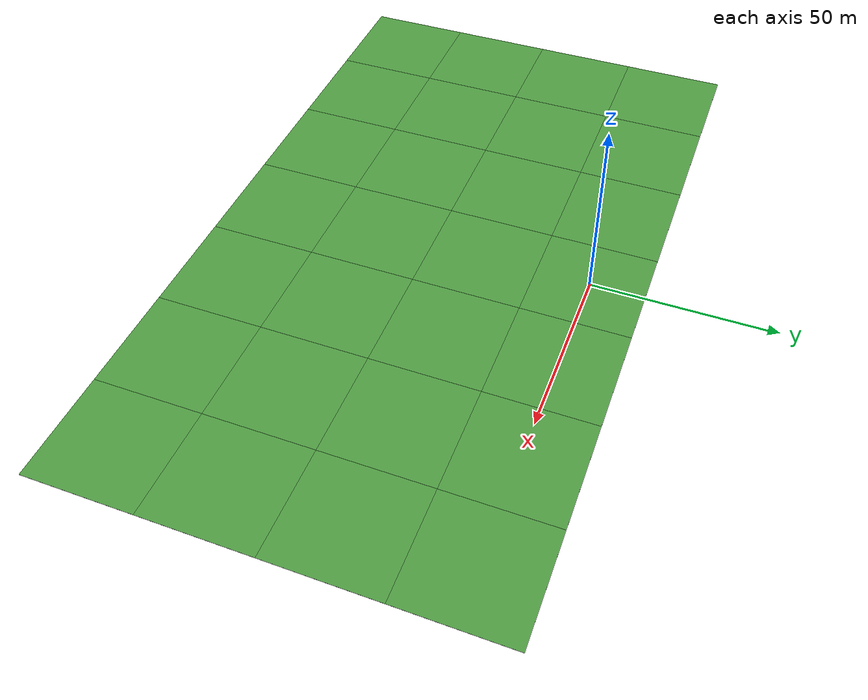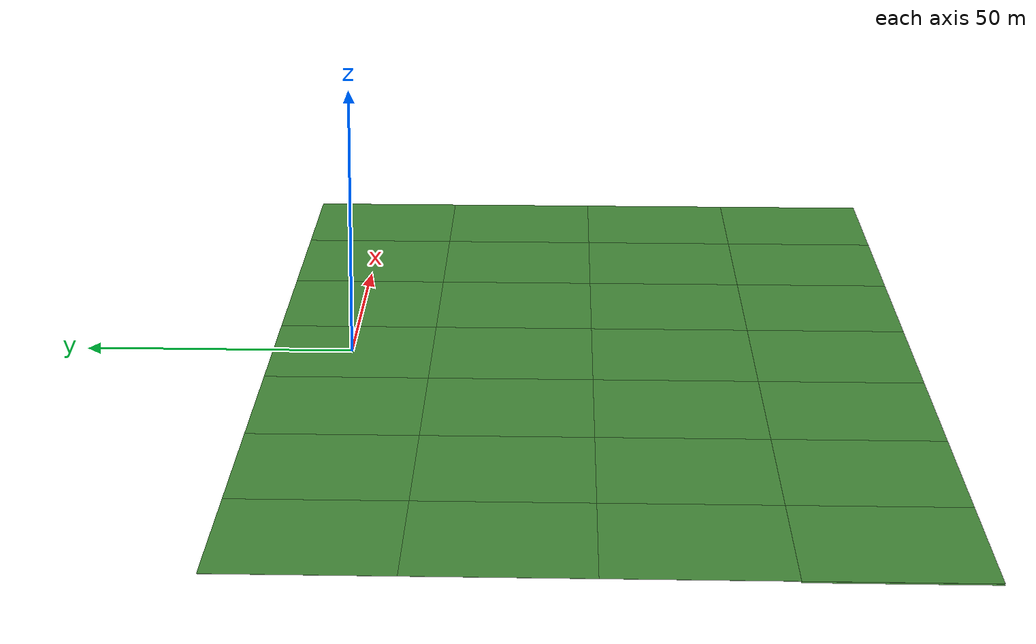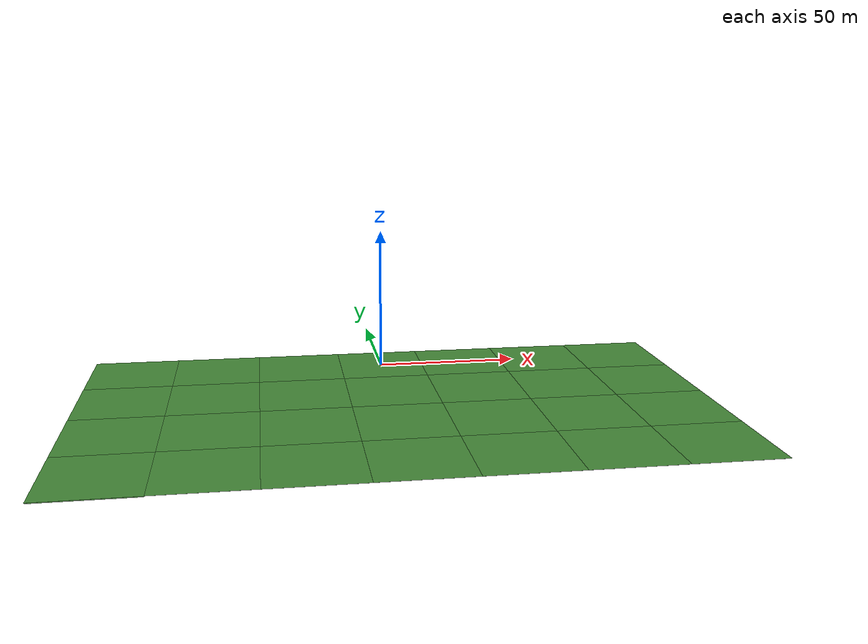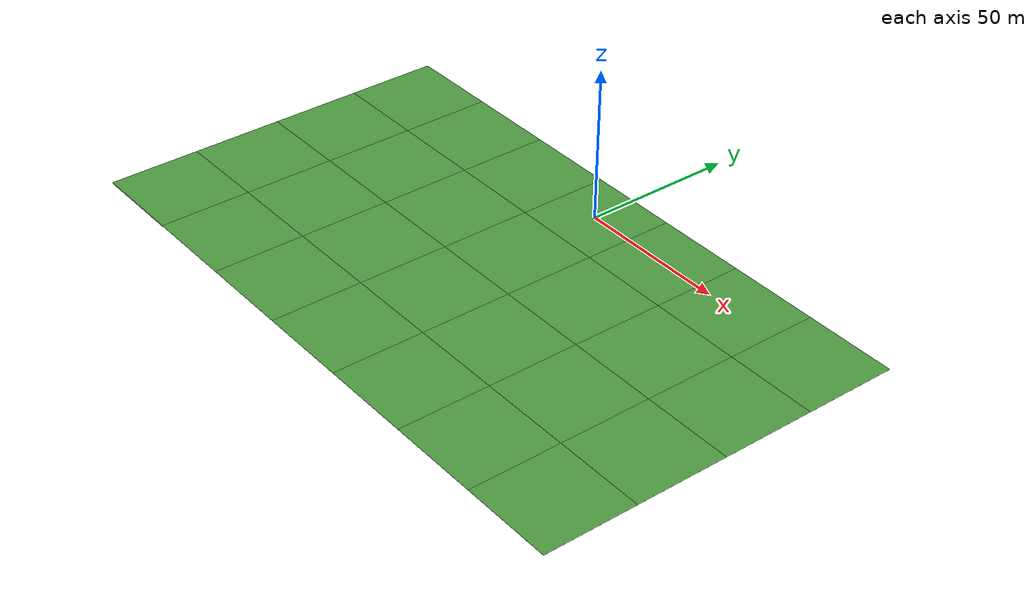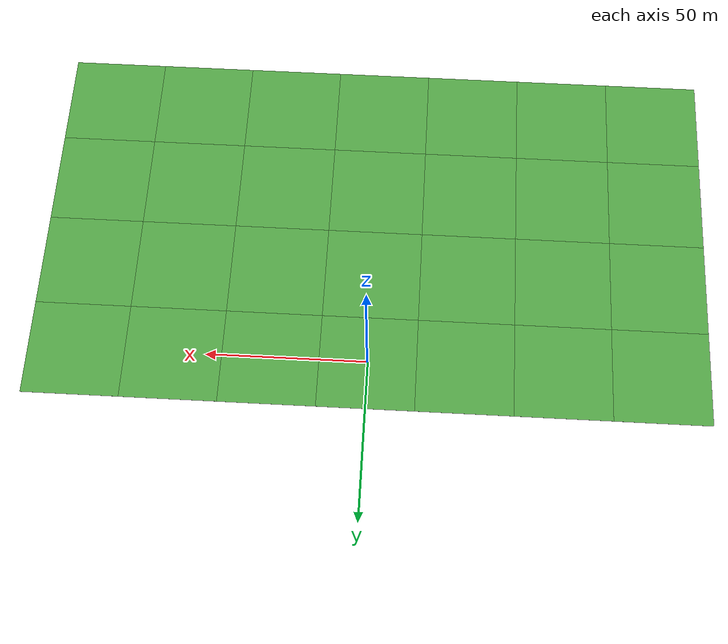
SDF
<?xml version='1.0'?>
<sdf version='1.4'>

  <model name='grass_plane'>

    <!-- Set static -->
    <static>true</static>

    <link name='link'>

      <!-- Set collision -->
      <collision name='collision'>
        <!-- Set geometry size -->
        <geometry>
          <plane>
            <normal>0 0 1</normal>
            <size>500 500</size>
          </plane>
        </geometry>
        <!-- Set surface -->
        <surface>
          <friction>
            <ode>
              <mu>0.5</mu>
              <mu2>.5</mu2>
            </ode>
          </friction>
        </surface>
      </collision>

      <!-- Set visial 0 -->
      <visual name='visual_0'>
        <pose>-90 -90 0 0 0 0</pose>
        <!-- No shadows -->
        <cast_shadows>false</cast_shadows>
        <!-- Set geometry size -->
        <geometry>
          <plane>
            <normal>0 0 1</normal>
            <size>30 30</size>
          </plane>
        </geometry>
        <!-- Set material -->
        <material>
          <script>
            <uri>model://grass_plane/materials/scripts</uri>
            <uri>model://grass_plane/materials/textures</uri>
            <name>vrc/grass</name>
          </script>
        </material>
      </visual>

      <!-- Set visial 1 -->
      <visual name='visual_1'>
        <pose>-60 -90 0 0 0 0</pose>
        <!-- No shadows -->
        <cast_shadows>false</cast_shadows>
        <!-- Set geometry size -->
        <geometry>
          <plane>
            <normal>0 0 1</normal>
            <size>30 30</size>
          </plane>
        </geometry>
        <!-- Set material -->
        <material>
          <script>
            <uri>model://grass_plane/materials/scripts</uri>
            <uri>model://grass_plane/materials/textures</uri>
            <name>vrc/grass</name>
          </script>
        </material>
      </visual>

      <!-- Set visial 2 -->
      <visual name='visual_2'>
        <pose>-30 -90 0 0 0 0</pose>
        <!-- No shadows -->
        <cast_shadows>false</cast_shadows>
        <!-- Set geometry size -->
        <geometry>
          <plane>
            <normal>0 0 1</normal>
            <size>30 30</size>
          </plane>
        </geometry>
        <!-- Set material -->
        <material>
          <script>
            <uri>model://grass_plane/materials/scripts</uri>
            <uri>model://grass_plane/materials/textures</uri>
            <name>vrc/grass</name>
          </script>
        </material>
      </visual>

      <!-- Set visial 3 -->
      <visual name='visual_3'>
        <pose>0 -90 0 0 0 0</pose>
        <!-- No shadows -->
        <cast_shadows>false</cast_shadows>
        <!-- Set geometry size -->
        <geometry>
          <plane>
            <normal>0 0 1</normal>
            <size>30 30</size>
          </plane>
        </geometry>
        <!-- Set material -->
        <material>
          <script>
            <uri>model://grass_plane/materials/scripts</uri>
            <uri>model://grass_plane/materials/textures</uri>
            <name>vrc/grass</name>
          </script>
        </material>
      </visual>

      <!-- Set visial 4 -->
      <visual name='visual_4'>
        <pose>30 -90 0 0 0 0</pose>
        <!-- No shadows -->
        <cast_shadows>false</cast_shadows>
        <!-- Set geometry size -->
        <geometry>
          <plane>
            <normal>0 0 1</normal>
            <size>30 30</size>
          </plane>
        </geometry>
        <!-- Set material -->
        <material>
          <script>
            <uri>model://grass_plane/materials/scripts</uri>
            <uri>model://grass_plane/materials/textures</uri>
            <name>vrc/grass</name>
          </script>
        </material>
      </visual>

      <!-- Set visial 5 -->
      <visual name='visual_5'>
        <pose>60 -90 0 0 0 0</pose>
        <!-- No shadows -->
        <cast_shadows>false</cast_shadows>
        <!-- Set geometry size -->
        <geometry>
          <plane>
            <normal>0 0 1</normal>
            <size>30 30</size>
          </plane>
        </geometry>
        <!-- Set material -->
        <material>
          <script>
            <uri>model://grass_plane/materials/scripts</uri>
            <uri>model://grass_plane/materials/textures</uri>
            <name>vrc/grass</name>
          </script>
        </material>
      </visual>

      <!-- Set visial 6 -->
      <visual name='visual_6'>
        <pose>90 -90 0 0 0 0</pose>
        <!-- No shadows -->
        <cast_shadows>false</cast_shadows>
        <!-- Set geometry size -->
        <geometry>
          <plane>
            <normal>0 0 1</normal>
            <size>30 30</size>
          </plane>
        </geometry>
        <!-- Set material -->
        <material>
          <script>
            <uri>model://grass_plane/materials/scripts</uri>
            <uri>model://grass_plane/materials/textures</uri>
            <name>vrc/grass</name>
          </script>
        </material>
      </visual>

      <!-- Set visial 7 -->
      <visual name='visual_7'>
        <pose>-90 -60 0 0 0 0</pose>
        <!-- No shadows -->
        <cast_shadows>false</cast_shadows>
        <!-- Set geometry size -->
        <geometry>
          <plane>
            <normal>0 0 1</normal>
            <size>30 30</size>
          </plane>
        </geometry>
        <!-- Set material -->
        <material>
          <script>
            <uri>model://grass_plane/materials/scripts</uri>
            <uri>model://grass_plane/materials/textures</uri>
            <name>vrc/grass</name>
          </script>
        </material>
      </visual>

      <!-- Set visial 8 -->
      <visual name='visual_8'>
        <pose>-60 -60 0 0 0 0</pose>
        <!-- No shadows -->
        <cast_shadows>false</cast_shadows>
        <!-- Set geometry size -->
        <geometry>
          <plane>
            <normal>0 0 1</normal>
            <size>30 30</size>
          </plane>
        </geometry>
        <!-- Set material -->
        <material>
          <script>
            <uri>model://grass_plane/materials/scripts</uri>
            <uri>model://grass_plane/materials/textures</uri>
            <name>vrc/grass</name>
          </script>
        </material>
      </visual>

      <!-- Set visial 9 -->
      <visual name='visual_9'>
        <pose>-30 -60 0 0 0 0</pose>
        <!-- No shadows -->
        <cast_shadows>false</cast_shadows>
        <!-- Set geometry size -->
        <geometry>
          <plane>
            <normal>0 0 1</normal>
            <size>30 30</size>
          </plane>
        </geometry>
        <!-- Set material -->
        <material>
          <script>
            <uri>model://grass_plane/materials/scripts</uri>
            <uri>model://grass_plane/materials/textures</uri>
            <name>vrc/grass</name>
          </script>
        </material>
      </visual>

      <!-- Set visial 10 -->
      <visual name='visual_10'>
        <pose>0 -60 0 0 0 0</pose>
        <!-- No shadows -->
        <cast_shadows>false</cast_shadows>
        <!-- Set geometry size -->
        <geometry>
          <plane>
            <normal>0 0 1</normal>
            <size>30 30</size>
          </plane>
        </geometry>
        <!-- Set material -->
        <material>
          <script>
            <uri>model://grass_plane/materials/scripts</uri>
            <uri>model://grass_plane/materials/textures</uri>
            <name>vrc/grass</name>
          </script>
        </material>
      </visual>

      <!-- Set visial 11 -->
      <visual name='visual_11'>
        <pose>30 -60 0 0 0 0</pose>
        <!-- No shadows -->
        <cast_shadows>false</cast_shadows>
        <!-- Set geometry size -->
        <geometry>
          <plane>
            <normal>0 0 1</normal>
            <size>30 30</size>
          </plane>
        </geometry>
        <!-- Set material -->
        <material>
          <script>
            <uri>model://grass_plane/materials/scripts</uri>
            <uri>model://grass_plane/materials/textures</uri>
            <name>vrc/grass</name>
          </script>
        </material>
      </visual>

      <!-- Set visial 12 -->
      <visual name='visual_12'>
        <pose>60 -60 0 0 0 0</pose>
        <!-- No shadows -->
        <cast_shadows>false</cast_shadows>
        <!-- Set geometry size -->
        <geometry>
          <plane>
            <normal>0 0 1</normal>
            <size>30 30</size>
          </plane>
        </geometry>
        <!-- Set material -->
        <material>
          <script>
            <uri>model://grass_plane/materials/scripts</uri>
            <uri>model://grass_plane/materials/textures</uri>
            <name>vrc/grass</name>
          </script>
        </material>
      </visual>

      <!-- Set visial 13 -->
      <visual name='visual_13'>
        <pose>90 -60 0 0 0 0</pose>
        <!-- No shadows -->
        <cast_shadows>false</cast_shadows>
        <!-- Set geometry size -->
        <geometry>
          <plane>
            <normal>0 0 1</normal>
            <size>30 30</size>
          </plane>
        </geometry>
        <!-- Set material -->
        <material>
          <script>
            <uri>model://grass_plane/materials/scripts</uri>
            <uri>model://grass_plane/materials/textures</uri>
            <name>vrc/grass</name>
          </script>
        </material>
      </visual>

      <!-- Set visial 14 -->
      <visual name='visual_14'>
        <pose>-90 -30 0 0 0 0</pose>
        <!-- No shadows -->
        <cast_shadows>false</cast_shadows>
        <!-- Set geometry size -->
        <geometry>
          <plane>
            <normal>0 0 1</normal>
            <size>30 30</size>
          </plane>
        </geometry>
        <!-- Set material -->
        <material>
          <script>
            <uri>model://grass_plane/materials/scripts</uri>
            <uri>model://grass_plane/materials/textures</uri>
            <name>vrc/grass</name>
          </script>
        </material>
      </visual>

      <!-- Set visial 15 -->
      <visual name='visual_15'>
        <pose>-60 -30 0 0 0 0</pose>
        <!-- No shadows -->
        <cast_shadows>false</cast_shadows>
        <!-- Set geometry size -->
        <geometry>
          <plane>
            <normal>0 0 1</normal>
            <size>30 30</size>
          </plane>
        </geometry>
        <!-- Set material -->
        <material>
          <script>
            <uri>model://grass_plane/materials/scripts</uri>
            <uri>model://grass_plane/materials/textures</uri>
            <name>vrc/grass</name>
          </script>
        </material>
      </visual>

      <!-- Set visial 16 -->
      <visual name='visual_16'>
        <pose>-30 -30 0 0 0 0</pose>
        <!-- No shadows -->
        <cast_shadows>false</cast_shadows>
        <!-- Set geometry size -->
        <geometry>
          <plane>
            <normal>0 0 1</normal>
            <size>30 30</size>
          </plane>
        </geometry>
        <!-- Set material -->
        <material>
          <script>
            <uri>model://grass_plane/materials/scripts</uri>
            <uri>model://grass_plane/materials/textures</uri>
            <name>vrc/grass</name>
          </script>
        </material>
      </visual>

      <!-- Set visial 17 -->
      <visual name='visual_17'>
        <pose>0 -30 0 0 0 0</pose>
        <!-- No shadows -->
        <cast_shadows>false</cast_shadows>
        <!-- Set geometry size -->
        <geometry>
          <plane>
            <normal>0 0 1</normal>
            <size>30 30</size>
          </plane>
        </geometry>
        <!-- Set material -->
        <material>
          <script>
            <uri>model://grass_plane/materials/scripts</uri>
            <uri>model://grass_plane/materials/textures</uri>
            <name>vrc/grass</name>
          </script>
        </material>
      </visual>

      <!-- Set visial 18 -->
      <visual name='visual_18'>
        <pose>30 -30 0 0 0 0</pose>
        <!-- No shadows -->
        <cast_shadows>false</cast_shadows>
        <!-- Set geometry size -->
        <geometry>
          <plane>
            <normal>0 0 1</normal>
            <size>30 30</size>
          </plane>
        </geometry>
        <!-- Set material -->
        <material>
          <script>
            <uri>model://grass_plane/materials/scripts</uri>
            <uri>model://grass_plane/materials/textures</uri>
            <name>vrc/grass</name>
          </script>
        </material>
      </visual>

      <!-- Set visial 19 -->
      <visual name='visual_19'>
        <pose>60 -30 0 0 0 0</pose>
        <!-- No shadows -->
        <cast_shadows>false</cast_shadows>
        <!-- Set geometry size -->
        <geometry>
          <plane>
            <normal>0 0 1</normal>
            <size>30 30</size>
          </plane>
        </geometry>
        <!-- Set material -->
        <material>
          <script>
            <uri>model://grass_plane/materials/scripts</uri>
            <uri>model://grass_plane/materials/textures</uri>
            <name>vrc/grass</name>
          </script>
        </material>
      </visual>

      <!-- Set visial 20 -->
      <visual name='visual_20'>
        <pose>90 -30 0 0 0 0</pose>
        <!-- No shadows -->
        <cast_shadows>false</cast_shadows>
        <!-- Set geometry size -->
        <geometry>
          <plane>
            <normal>0 0 1</normal>
            <size>30 30</size>
          </plane>
        </geometry>
        <!-- Set material -->
        <material>
          <script>
            <uri>model://grass_plane/materials/scripts</uri>
            <uri>model://grass_plane/materials/textures</uri>
            <name>vrc/grass</name>
          </script>
        </material>
      </visual>

      <!-- Set visial 21 -->
      <visual name='visual_21'>
        <pose>-90 0 0 0 0 0</pose>
        <!-- No shadows -->
        <cast_shadows>false</cast_shadows>
        <!-- Set geometry size -->
        <geometry>
          <plane>
            <normal>0 0 1</normal>
            <size>30 30</size>
          </plane>
        </geometry>
        <!-- Set material -->
        <material>
          <script>
            <uri>model://grass_plane/materials/scripts</uri>
            <uri>model://grass_plane/materials/textures</uri>
            <name>vrc/grass</name>
          </script>
        </material>
      </visual>

      <!-- Set visial 22 -->
      <visual name='visual_22'>
        <pose>-60 0 0 0 0 0</pose>
        <!-- No shadows -->
        <cast_shadows>false</cast_shadows>
        <!-- Set geometry size -->
        <geometry>
          <plane>
            <normal>0 0 1</normal>
            <size>30 30</size>
          </plane>
        </geometry>
        <!-- Set material -->
        <material>
          <script>
            <uri>model://grass_plane/materials/scripts</uri>
            <uri>model://grass_plane/materials/textures</uri>
            <name>vrc/grass</name>
          </script>
        </material>
      </visual>

      <!-- Set visial 23 -->
      <visual name='visual_23'>
        <pose>-30 0 0 0 0 0</pose>
        <!-- No shadows -->
        <cast_shadows>false</cast_shadows>
        <!-- Set geometry size -->
        <geometry>
          <plane>
            <normal>0 0 1</normal>
            <size>30 30</size>
          </plane>
        </geometry>
        <!-- Set material -->
        <material>
          <script>
            <uri>model://grass_plane/materials/scripts</uri>
            <uri>model://grass_plane/materials/textures</uri>
            <name>vrc/grass</name>
          </script>
        </material>
      </visual>

      <!-- Set visial 24 -->
      <visual name='visual_24'>
        <pose>0 0 0 0 0 0</pose>
        <!-- No shadows -->
        <cast_shadows>false</cast_shadows>
        <!-- Set geometry size -->
        <geometry>
          <plane>
            <normal>0 0 1</normal>
            <size>30 30</size>
          </plane>
        </geometry>
        <!-- Set material -->
        <material>
          <script>
            <uri>model://grass_plane/materials/scripts</uri>
            <uri>model://grass_plane/materials/textures</uri>
            <name>vrc/grass</name>
          </script>
        </material>
      </visual>

      <!-- Set visial 25 -->
      <visual name='visual_25'>
        <pose>30 0 0 0 0 0</pose>
        <!-- No shadows -->
        <cast_shadows>false</cast_shadows>
        <!-- Set geometry size -->
        <geometry>
          <plane>
            <normal>0 0 1</normal>
            <size>30 30</size>
          </plane>
        </geometry>
        <!-- Set material -->
        <material>
          <script>
            <uri>model://grass_plane/materials/scripts</uri>
            <uri>model://grass_plane/materials/textures</uri>
            <name>vrc/grass</name>
          </script>
        </material>
      </visual>

      <!-- Set visial 26 -->
      <visual name='visual_26'>
        <pose>60 0 0 0 0 0</pose>
        <!-- No shadows -->
        <cast_shadows>false</cast_shadows>
        <!-- Set geometry size -->
        <geometry>
          <plane>
            <normal>0 0 1</normal>
            <size>30 30</size>
          </plane>
        </geometry>
        <!-- Set material -->
        <material>
          <script>
            <uri>model://grass_plane/materials/scripts</uri>
            <uri>model://grass_plane/materials/textures</uri>
            <name>vrc/grass</name>
          </script>
        </material>
      </visual>

      <!-- Set visial 27 -->
      <visual name='visual_27'>
        <pose>90 0 0 0 0 0</pose>
        <!-- No shadows -->
        <cast_shadows>false</cast_shadows>
        <!-- Set geometry size -->
        <geometry>
          <plane>
            <normal>0 0 1</normal>
            <size>30 30</size>
          </plane>
        </geometry>
        <!-- Set material -->
        <material>
          <script>
            <uri>model://grass_plane/materials/scripts</uri>
            <uri>model://grass_plane/materials/textures</uri>
            <name>vrc/grass</name>
          </script>
        </material>
      </visual>

      <!-- Set visial 28 -->
      <visual name='visual_28'>
        <pose>-90 -30 0 0 0 0</pose>
        <!-- No shadows -->
        <cast_shadows>false</cast_shadows>
        <!-- Set geometry size -->
        <geometry>
          <plane>
            <normal>0 0 1</normal>
            <size>30 30</size>
          </plane>
        </geometry>
        <!-- Set material -->
        <material>
          <script>
            <uri>model://grass_plane/materials/scripts</uri>
            <uri>model://grass_plane/materials/textures</uri>
            <name>vrc/grass</name>
          </script>
        </material>
      </visual>

      <!-- Set visial 29 -->
      <visual name='visual_29'>
        <pose>-60 -30 0 0 0 0</pose>
        <!-- No shadows -->
        <cast_shadows>false</cast_shadows>
        <!-- Set geometry size -->
        <geometry>
          <plane>
            <normal>0 0 1</normal>
            <size>30 30</size>
          </plane>
        </geometry>
        <!-- Set material -->
        <material>
          <script>
            <uri>model://grass_plane/materials/scripts</uri>
            <uri>model://grass_plane/materials/textures</uri>
            <name>vrc/grass</name>
          </script>
        </material>
      </visual>

      <!-- Set visial 30 -->
      <visual name='visual_30'>
        <pose>-30 -30 0 0 0 0</pose>
        <!-- No shadows -->
        <cast_shadows>false</cast_shadows>
        <!-- Set geometry size -->
        <geometry>
          <plane>
            <normal>0 0 1</normal>
            <size>30 30</size>
          </plane>
        </geometry>
        <!-- Set material -->
        <material>
          <script>
            <uri>model://grass_plane/materials/scripts</uri>
            <uri>model://grass_plane/materials/textures</uri>
            <name>vrc/grass</name>
          </script>
        </material>
      </visual>

      <!-- Set visial 31 -->
      <visual name='visual_31'>
        <pose>0 -30 0 0 0 0</pose>
        <!-- No shadows -->
        <cast_shadows>false</cast_shadows>
        <!-- Set geometry size -->
        <geometry>
          <plane>
            <normal>0 0 1</normal>
            <size>30 30</size>
          </plane>
        </geometry>
        <!-- Set material -->
        <material>
          <script>
            <uri>model://grass_plane/materials/scripts</uri>
            <uri>model://grass_plane/materials/textures</uri>
            <name>vrc/grass</name>
          </script>
        </material>
      </visual>

      <!-- Set visial 32 -->
      <visual name='visual_32'>
        <pose>30 -30 0 0 0 0</pose>
        <!-- No shadows -->
        <cast_shadows>false</cast_shadows>
        <!-- Set geometry size -->
        <geometry>
          <plane>
            <normal>0 0 1</normal>
            <size>30 30</size>
          </plane>
        </geometry>
        <!-- Set material -->
        <material>
          <script>
            <uri>model://grass_plane/materials/scripts</uri>
            <uri>model://grass_plane/materials/textures</uri>
            <name>vrc/grass</name>
          </script>
        </material>
      </visual>

      <!-- Set visial 33 -->
      <visual name='visual_33'>
        <pose>60 -30 0 0 0 0</pose>
        <!-- No shadows -->
        <cast_shadows>false</cast_shadows>
        <!-- Set geometry size -->
        <geometry>
          <plane>
            <normal>0 0 1</normal>
            <size>30 30</size>
          </plane>
        </geometry>
        <!-- Set material -->
        <material>
          <script>
            <uri>model://grass_plane/materials/scripts</uri>
            <uri>model://grass_plane/materials/textures</uri>
            <name>vrc/grass</name>
          </script>
        </material>
      </visual>

      <!-- Set visial 34 -->
      <visual name='visual_34'>
        <pose>90 -30 0 0 0 0</pose>
        <!-- No shadows -->
        <cast_shadows>false</cast_shadows>
        <!-- Set geometry size -->
        <geometry>
          <plane>
            <normal>0 0 1</normal>
            <size>30 30</size>
          </plane>
        </geometry>
        <!-- Set material -->
        <material>
          <script>
            <uri>model://grass_plane/materials/scripts</uri>
            <uri>model://grass_plane/materials/textures</uri>
            <name>vrc/grass</name>
          </script>
        </material>
      </visual>

      <!-- Set visial 35 -->
      <visual name='visual_35'>
        <pose>-90 -60 0 0 0 0</pose>
        <!-- No shadows -->
        <cast_shadows>false</cast_shadows>
        <!-- Set geometry size -->
        <geometry>
          <plane>
            <normal>0 0 1</normal>
            <size>30 30</size>
          </plane>
        </geometry>
        <!-- Set material -->
        <material>
          <script>
            <uri>model://grass_plane/materials/scripts</uri>
            <uri>model://grass_plane/materials/textures</uri>
            <name>vrc/grass</name>
          </script>
        </material>
      </visual>

      <!-- Set visial 36 -->
      <visual name='visual_36'>
        <pose>-60 -60 0 0 0 0</pose>
        <!-- No shadows -->
        <cast_shadows>false</cast_shadows>
        <!-- Set geometry size -->
        <geometry>
          <plane>
            <normal>0 0 1</normal>
            <size>30 30</size>
          </plane>
        </geometry>
        <!-- Set material -->
        <material>
          <script>
            <uri>model://grass_plane/materials/scripts</uri>
            <uri>model://grass_plane/materials/textures</uri>
            <name>vrc/grass</name>
          </script>
        </material>
      </visual>

      <!-- Set visial 37 -->
      <visual name='visual_37'>
        <pose>-30 -60 0 0 0 0</pose>
        <!-- No shadows -->
        <cast_shadows>false</cast_shadows>
        <!-- Set geometry size -->
        <geometry>
          <plane>
            <normal>0 0 1</normal>
            <size>30 30</size>
          </plane>
        </geometry>
        <!-- Set material -->
        <material>
          <script>
            <uri>model://grass_plane/materials/scripts</uri>
            <uri>model://grass_plane/materials/textures</uri>
            <name>vrc/grass</name>
          </script>
        </material>
      </visual>

      <!-- Set visial 38 -->
      <visual name='visual_38'>
        <pose>0 -60 0 0 0 0</pose>
        <!-- No shadows -->
        <cast_shadows>false</cast_shadows>
        <!-- Set geometry size -->
        <geometry>
          <plane>
            <normal>0 0 1</normal>
            <size>30 30</size>
          </plane>
        </geometry>
        <!-- Set material -->
        <material>
          <script>
            <uri>model://grass_plane/materials/scripts</uri>
            <uri>model://grass_plane/materials/textures</uri>
            <name>vrc/grass</name>
          </script>
        </material>
      </visual>

      <!-- Set visial 39 -->
      <visual name='visual_39'>
        <pose>30 -60 0 0 0 0</pose>
        <!-- No shadows -->
        <cast_shadows>false</cast_shadows>
        <!-- Set geometry size -->
        <geometry>
          <plane>
            <normal>0 0 1</normal>
            <size>30 30</size>
          </plane>
        </geometry>
        <!-- Set material -->
        <material>
          <script>
            <uri>model://grass_plane/materials/scripts</uri>
            <uri>model://grass_plane/materials/textures</uri>
            <name>vrc/grass</name>
          </script>
        </material>
      </visual>

      <!-- Set visial 40 -->
      <visual name='visual_40'>
        <pose>60 -60 0 0 0 0</pose>
        <!-- No shadows -->
        <cast_shadows>false</cast_shadows>
        <!-- Set geometry size -->
        <geometry>
          <plane>
            <normal>0 0 1</normal>
            <size>30 30</size>
          </plane>
        </geometry>
        <!-- Set material -->
        <material>
          <script>
            <uri>model://grass_plane/materials/scripts</uri>
            <uri>model://grass_plane/materials/textures</uri>
            <name>vrc/grass</name>
          </script>
        </material>
      </visual>

      <!-- Set visial 41 -->
      <visual name='visual_41'>
        <pose>90 -60 0 0 0 0</pose>
        <!-- No shadows -->
        <cast_shadows>false</cast_shadows>
        <!-- Set geometry size -->
        <geometry>
          <plane>
            <normal>0 0 1</normal>
            <size>30 30</size>
          </plane>
        </geometry>
        <!-- Set material -->
        <material>
          <script>
            <uri>model://grass_plane/materials/scripts</uri>
            <uri>model://grass_plane/materials/textures</uri>
            <name>vrc/grass</name>
          </script>
        </material>
      </visual>

      <!-- Set visial 42 -->
      <visual name='visual_42'>
        <pose>-90 -90 0 0 0 0</pose>
        <!-- No shadows -->
        <cast_shadows>false</cast_shadows>
        <!-- Set geometry size -->
        <geometry>
          <plane>
            <normal>0 0 1</normal>
            <size>30 30</size>
          </plane>
        </geometry>
        <!-- Set material -->
        <material>
          <script>
            <uri>model://grass_plane/materials/scripts</uri>
            <uri>model://grass_plane/materials/textures</uri>
            <name>vrc/grass</name>
          </script>
        </material>
      </visual>

      <!-- Set visial 43 -->
      <visual name='visual_43'>
        <pose>-60 -90 0 0 0 0</pose>
        <!-- No shadows -->
        <cast_shadows>false</cast_shadows>
        <!-- Set geometry size -->
        <geometry>
          <plane>
            <normal>0 0 1</normal>
            <size>30 30</size>
          </plane>
        </geometry>
        <!-- Set material -->
        <material>
          <script>
            <uri>model://grass_plane/materials/scripts</uri>
            <uri>model://grass_plane/materials/textures</uri>
            <name>vrc/grass</name>
          </script>
        </material>
      </visual>

      <!-- Set visial 44 -->
      <visual name='visual_44'>
        <pose>-30 -90 0 0 0 0</pose>
        <!-- No shadows -->
        <cast_shadows>false</cast_shadows>
        <!-- Set geometry size -->
        <geometry>
          <plane>
            <normal>0 0 1</normal>
            <size>30 30</size>
          </plane>
        </geometry>
        <!-- Set material -->
        <material>
          <script>
            <uri>model://grass_plane/materials/scripts</uri>
            <uri>model://grass_plane/materials/textures</uri>
            <name>vrc/grass</name>
          </script>
        </material>
      </visual>

      <!-- Set visial 45 -->
      <visual name='visual_45'>
        <pose>0 -90 0 0 0 0</pose>
        <!-- No shadows -->
        <cast_shadows>false</cast_shadows>
        <!-- Set geometry size -->
        <geometry>
          <plane>
            <normal>0 0 1</normal>
            <size>30 30</size>
          </plane>
        </geometry>
        <!-- Set material -->
        <material>
          <script>
            <uri>model://grass_plane/materials/scripts</uri>
            <uri>model://grass_plane/materials/textures</uri>
            <name>vrc/grass</name>
          </script>
        </material>
      </visual>

      <!-- Set visial 46 -->
      <visual name='visual_46'>
        <pose>30 -90 0 0 0 0</pose>
        <!-- No shadows -->
        <cast_shadows>false</cast_shadows>
        <!-- Set geometry size -->
        <geometry>
          <plane>
            <normal>0 0 1</normal>
            <size>30 30</size>
          </plane>
        </geometry>
        <!-- Set material -->
        <material>
          <script>
            <uri>model://grass_plane/materials/scripts</uri>
            <uri>model://grass_plane/materials/textures</uri>
            <name>vrc/grass</name>
          </script>
        </material>
      </visual>

      <!-- Set visial 47 -->
      <visual name='visual_47'>
        <pose>60 -90 0 0 0 0</pose>
        <!-- No shadows -->
        <cast_shadows>false</cast_shadows>
        <!-- Set geometry size -->
        <geometry>
          <plane>
            <normal>0 0 1</normal>
            <size>30 30</size>
          </plane>
        </geometry>
        <!-- Set material -->
        <material>
          <script>
            <uri>model://grass_plane/materials/scripts</uri>
            <uri>model://grass_plane/materials/textures</uri>
            <name>vrc/grass</name>
          </script>
        </material>
      </visual>

      <!-- Set visial 48 -->
      <visual name='visual_48'>
        <pose>90 -90 0 0 0 0</pose>
        <!-- No shadows -->
        <cast_shadows>false</cast_shadows>
        <!-- Set geometry size -->
        <geometry>
          <plane>
            <normal>0 0 1</normal>
            <size>30 30</size>
          </plane>
        </geometry>
        <!-- Set material -->
        <material>
          <script>
            <uri>model://grass_plane/materials/scripts</uri>
            <uri>model://grass_plane/materials/textures</uri>
            <name>vrc/grass</name>
          </script>
        </material>
      </visual>

    </link>

  </model>

</sdf>
